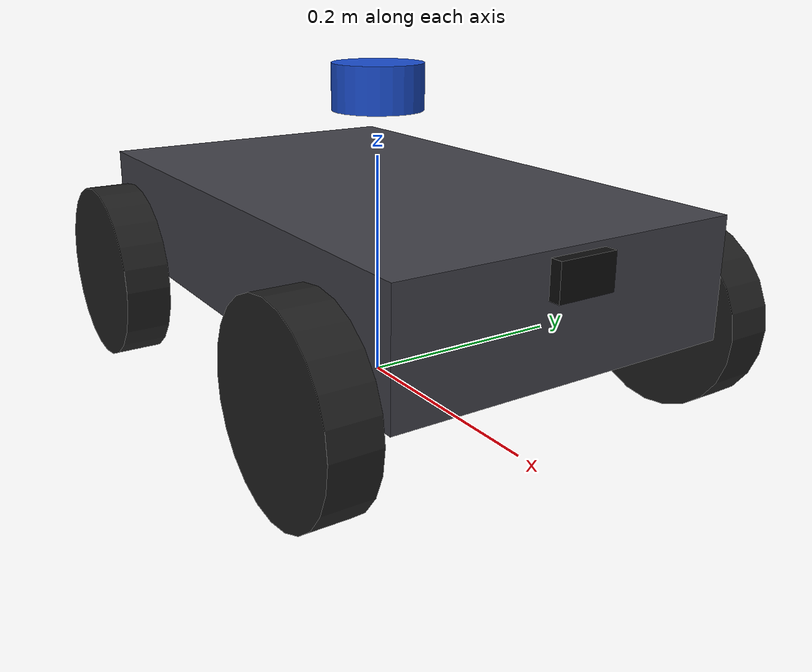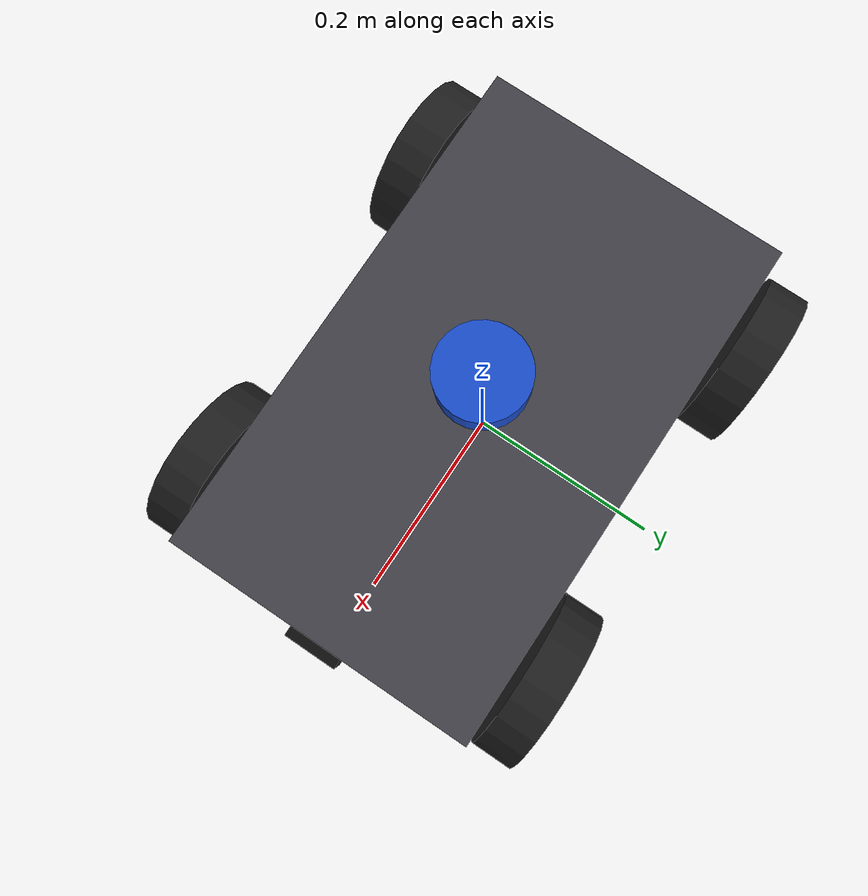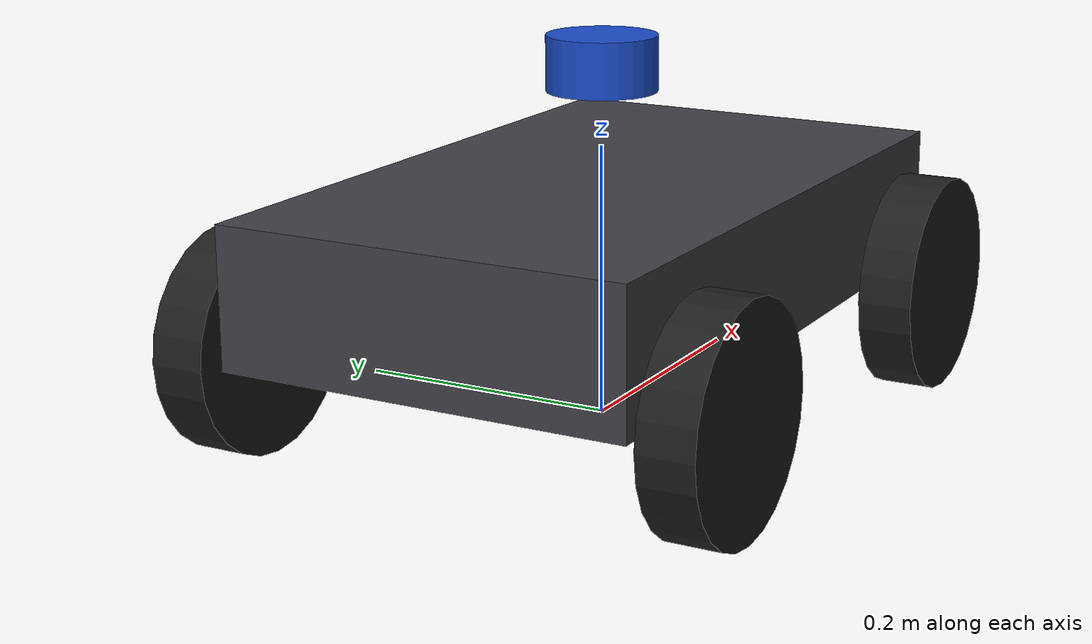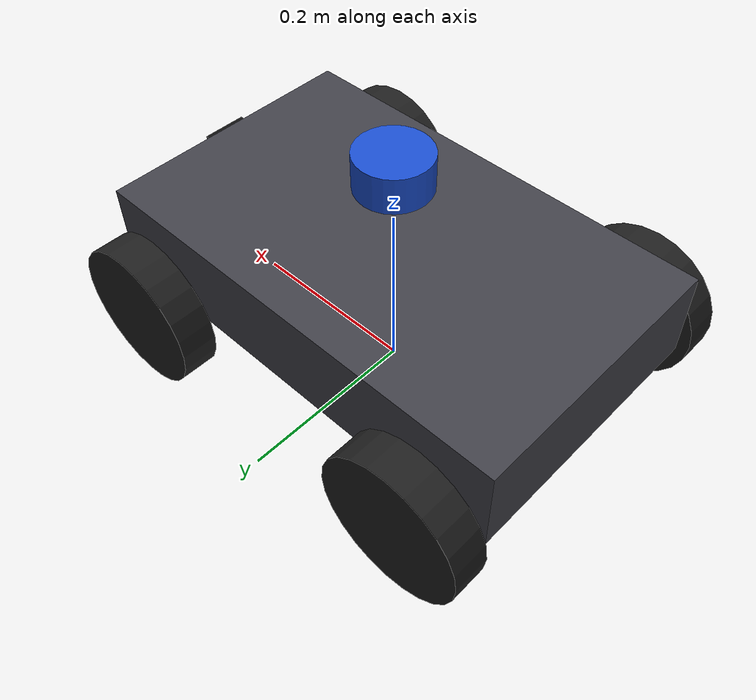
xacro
<?xml version="1.0"?>
<robot name="four_wheel_steering_robot" xmlns:xacro="http://www.ros.org/wiki/xacro">

  <!-- Arguments -->
  <xacro:arg name="controllers_yaml" default=""/>
  <xacro:arg name="camera_width" default="640"/>
  <xacro:arg name="camera_height" default="480"/>

  <!-- Include modular components -->
  <xacro:include filename="materials.xacro"/>
  <xacro:include filename="chassis.xacro"/>
  <xacro:include filename="steering.xacro"/>
  <xacro:include filename="wheel.xacro"/>
  <xacro:include filename="sensors.xacro"/>
  <xacro:include filename="ros2_control.xacro"/>

  <!-- Geometry constants -->
  <xacro:property name="wheel_base_half" value="0.18"/>
  <xacro:property name="track_width_half" value="0.18"/>

  <!-- Front Left Corner -->
  <xacro:steering_assembly prefix="fl" parent="base_link"
                           x="${wheel_base_half}" y="${track_width_half}" z="0.0"/>
  <xacro:driven_wheel prefix="fl" parent="fl_knuckle_link"/>

  <!-- Front Right Corner -->
  <xacro:steering_assembly prefix="fr" parent="base_link"
                           x="${wheel_base_half}" y="-${track_width_half}" z="0.0"/>
  <xacro:driven_wheel prefix="fr" parent="fr_knuckle_link"/>

  <!-- Rear Left Corner -->
  <xacro:steering_assembly prefix="rl" parent="base_link"
                           x="-${wheel_base_half}" y="${track_width_half}" z="0.0"/>
  <xacro:driven_wheel prefix="rl" parent="rl_knuckle_link"/>

  <!-- Rear Right Corner -->
  <xacro:steering_assembly prefix="rr" parent="base_link"
                           x="-${wheel_base_half}" y="-${track_width_half}" z="0.0"/>
  <xacro:driven_wheel prefix="rr" parent="rr_knuckle_link"/>

  <!-- ros2_control Hardware Interface & Gazebo Plugin -->
  <xacro:four_wheel_ros2_control controllers_yaml="$(arg controllers_yaml)"/>

</robot>

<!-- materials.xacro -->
<robot xmlns:xacro="http://www.ros.org/wiki/xacro">

  <material name="chassis_grey">
    <color rgba="0.25 0.25 0.28 1.0"/>
  </material>

  <material name="knuckle_silver">
    <color rgba="0.75 0.75 0.75 1.0"/>
  </material>

  <material name="wheel_dark">
    <color rgba="0.12 0.12 0.12 1.0"/>
  </material>

  <material name="lidar_blue">
    <color rgba="0.1 0.3 0.8 1.0"/>
  </material>

  <material name="sensor_black">
    <color rgba="0.05 0.05 0.05 1.0"/>
  </material>

  <material name="accent_orange">
    <color rgba="0.95 0.45 0.1 1.0"/>
  </material>

</robot>

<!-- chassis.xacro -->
<robot xmlns:xacro="http://www.ros.org/wiki/xacro">

  <!-- Base footprint: massless ground projection link -->
  <link name="base_footprint"/>

  <joint name="base_footprint_joint" type="fixed">
    <parent link="base_footprint"/>
    <child link="base_link"/>
    <origin xyz="0 0 0.08" rpy="0 0 0"/>
  </joint>

  <!-- Base link: main chassis body -->
  <link name="base_link">
    <visual>
      <origin xyz="0 0 0.05" rpy="0 0 0"/>
      <geometry>
        <box size="0.50 0.30 0.10"/>
      </geometry>
      <material name="chassis_grey"/>
    </visual>
    <collision>
      <origin xyz="0 0 0.05" rpy="0 0 0"/>
      <geometry>
        <box size="0.52 0.38 0.14"/>
      </geometry>
    </collision>
    <inertial>
      <origin xyz="0 0 0.05" rpy="0 0 0"/>
      <mass value="8.0"/>
      <inertia ixx="0.066667" ixy="0.0" ixz="0.0"
               iyy="0.173333" iyz="0.0"
               izz="0.226667"/>
    </inertial>
  </link>

  <gazebo reference="base_link">
    <material>Gazebo/DarkGrey</material>
    <mu1>0.8</mu1>
    <mu2>0.8</mu2>
    <kp>10000000.0</kp>
    <kd>10.0</kd>
    <minDepth>0.002</minDepth>
    <maxVel>0.01</maxVel>
  </gazebo>

</robot>

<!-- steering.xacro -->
<robot xmlns:xacro="http://www.ros.org/wiki/xacro">

  <!-- Macro for steering knuckle assembly -->
  <xacro:macro name="steering_assembly" params="prefix parent x y z">
    <joint name="${prefix}_steering_joint" type="revolute">
      <parent link="${parent}"/>
      <child link="${prefix}_knuckle_link"/>
      <origin xyz="${x} ${y} ${z}" rpy="0 0 0"/>
      <axis xyz="0 0 1"/>
      <limit lower="-1.57079632679" upper="1.57079632679" effort="25.0" velocity="4.0"/>
      <dynamics damping="0.1" friction="0.05"/>
    </joint>

    <link name="${prefix}_knuckle_link">
      <visual>
        <origin xyz="0 0 0" rpy="0 0 0"/>
        <geometry>
          <cylinder radius="0.02" length="0.06"/>
        </geometry>
        <material name="knuckle_silver"/>
      </visual>
      <collision>
        <origin xyz="0 0 0" rpy="0 0 0"/>
        <geometry>
          <cylinder radius="0.02" length="0.06"/>
        </geometry>
      </collision>
      <inertial>
        <origin xyz="0 0 0" rpy="0 0 0"/>
        <mass value="0.3"/>
        <inertia ixx="0.00012" ixy="0.0" ixz="0.0"
                 iyy="0.00012" iyz="0.0"
                 izz="0.00006"/>
      </inertial>
    </link>

    <gazebo reference="${prefix}_knuckle_link">
      <material>Gazebo/Grey</material>
    </gazebo>
  </xacro:macro>

</robot>

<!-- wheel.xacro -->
<robot xmlns:xacro="http://www.ros.org/wiki/xacro">

  <!-- Macro for driven wheel assembly -->
  <xacro:macro name="driven_wheel" params="prefix parent">
    <joint name="${prefix}_wheel_joint" type="continuous">
      <parent link="${parent}"/>
      <child link="${prefix}_wheel_link"/>
      <origin xyz="0 0 0" rpy="0 0 0"/>
      <axis xyz="0 1 0"/>
      <dynamics damping="0.05" friction="0.02"/>
    </joint>

    <link name="${prefix}_wheel_link">
      <visual>
        <origin xyz="0 0 0" rpy="${pi/2} 0 0"/>
        <geometry>
          <cylinder radius="0.08" length="0.04"/>
        </geometry>
        <material name="wheel_dark"/>
      </visual>
      <collision>
        <origin xyz="0 0 0" rpy="${pi/2} 0 0"/>
        <geometry>
          <cylinder radius="0.08" length="0.04"/>
        </geometry>
      </collision>
      <inertial>
        <origin xyz="0 0 0" rpy="0 0 0"/>
        <mass value="0.6"/>
        <inertia ixx="0.00104" ixy="0.0" ixz="0.0"
                 iyy="0.00192" iyz="0.0"
                 izz="0.00104"/>
      </inertial>
    </link>

    <gazebo reference="${prefix}_wheel_link">
      <material>Gazebo/Black</material>
      <mu1>1.0</mu1>
      <mu2>0.2</mu2>
      <kp>1000000.0</kp>
      <kd>100.0</kd>
      <minDepth>0.001</minDepth>
    </gazebo>
  </xacro:macro>

</robot>

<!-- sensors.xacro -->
<robot xmlns:xacro="http://www.ros.org/wiki/xacro">

  <!-- ==================== LiDAR Sensor ==================== -->
  <link name="lidar_link">
    <visual>
      <origin xyz="0 0 0" rpy="0 0 0"/>
      <geometry>
        <cylinder radius="0.04" length="0.04"/>
      </geometry>
      <material name="lidar_blue"/>
    </visual>
    <collision>
      <origin xyz="0 0 0" rpy="0 0 0"/>
      <geometry>
        <cylinder radius="0.04" length="0.04"/>
      </geometry>
    </collision>
    <inertial>
      <origin xyz="0 0 0" rpy="0 0 0"/>
      <mass value="0.15"/>
      <inertia ixx="0.00008" ixy="0.0" ixz="0.0"
               iyy="0.00008" iyz="0.0"
               izz="0.00012"/>
    </inertial>
  </link>

  <joint name="lidar_joint" type="fixed">
    <parent link="base_link"/>
    <child link="lidar_link"/>
    <origin xyz="0.0 0.0 0.18" rpy="0 0 0"/>
  </joint>

  <gazebo reference="lidar_link">
    <material>Gazebo/Blue</material>
    <sensor name="lidar" type="gpu_lidar">
      <pose>0 0 0 0 0 0</pose>
      <always_on>true</always_on>
      <visualize>true</visualize>
      <update_rate>15</update_rate>
      <topic>/scan</topic>
      <gz_frame_id>lidar_link</gz_frame_id>
      <ray>
        <scan>
          <horizontal>
            <samples>720</samples>
            <resolution>1.0</resolution>
            <min_angle>-3.14159265359</min_angle>
            <max_angle>3.14159265359</max_angle>
          </horizontal>
        </scan>
        <range>
          <min>0.10</min>
          <max>20.0</max>
          <resolution>0.01</resolution>
        </range>
      </ray>
    </sensor>
  </gazebo>

  <!-- ==================== IMU Sensor ==================== -->
  <link name="imu_link">
    <visual>
      <origin xyz="0 0 0" rpy="0 0 0"/>
      <geometry>
        <box size="0.03 0.03 0.015"/>
      </geometry>
      <material name="accent_orange"/>
    </visual>
    <collision>
      <origin xyz="0 0 0" rpy="0 0 0"/>
      <geometry>
        <box size="0.03 0.03 0.015"/>
      </geometry>
    </collision>
    <inertial>
      <origin xyz="0 0 0" rpy="0 0 0"/>
      <mass value="0.05"/>
      <inertia ixx="0.00001" ixy="0.0" ixz="0.0"
               iyy="0.00001" iyz="0.0"
               izz="0.00001"/>
    </inertial>
  </link>

  <joint name="imu_joint" type="fixed">
    <parent link="base_link"/>
    <child link="imu_link"/>
    <origin xyz="0.0 0.0 0.05" rpy="0 0 0"/>
  </joint>

  <gazebo reference="imu_link">
    <material>Gazebo/Orange</material>
    <sensor name="imu_sensor" type="imu">
      <always_on>true</always_on>
      <update_rate>50</update_rate>
      <topic>/imu/data</topic>
      <gz_frame_id>imu_link</gz_frame_id>
      <imu>
        <angular_velocity>
          <x>
            <noise type="gaussian">
              <mean>0.0</mean>
              <stddev>0.0002</stddev>
            </noise>
          </x>
          <y>
            <noise type="gaussian">
              <mean>0.0</mean>
              <stddev>0.0002</stddev>
            </noise>
          </y>
          <z>
            <noise type="gaussian">
              <mean>0.0</mean>
              <stddev>0.0002</stddev>
            </noise>
          </z>
        </angular_velocity>
        <linear_acceleration>
          <x>
            <noise type="gaussian">
              <mean>0.0</mean>
              <stddev>0.001</stddev>
            </noise>
          </x>
          <y>
            <noise type="gaussian">
              <mean>0.0</mean>
              <stddev>0.001</stddev>
            </noise>
          </y>
          <z>
            <noise type="gaussian">
              <mean>0.0</mean>
              <stddev>0.001</stddev>
            </noise>
          </z>
        </linear_acceleration>
      </imu>
    </sensor>
  </gazebo>

  <!-- ==================== Camera Sensor ==================== -->
  <link name="camera_link">
    <visual>
      <origin xyz="0 0 0" rpy="0 0 0"/>
      <geometry>
        <box size="0.02 0.05 0.03"/>
      </geometry>
      <material name="sensor_black"/>
    </visual>
    <collision>
      <origin xyz="0 0 0" rpy="0 0 0"/>
      <geometry>
        <box size="0.02 0.05 0.03"/>
      </geometry>
    </collision>
    <inertial>
      <origin xyz="0 0 0" rpy="0 0 0"/>
      <mass value="0.05"/>
      <inertia ixx="0.00001" ixy="0.0" ixz="0.0"
               iyy="0.00001" iyz="0.0"
               izz="0.00001"/>
    </inertial>
  </link>

  <joint name="camera_joint" type="fixed">
    <parent link="base_link"/>
    <child link="camera_link"/>
    <origin xyz="0.25 0.0 0.08" rpy="0 0 0"/>
  </joint>

  <link name="camera_optical_link">
    <inertial>
      <origin xyz="0 0 0" rpy="0 0 0"/>
      <mass value="0.001"/>
      <inertia ixx="0.000001" ixy="0.0" ixz="0.0"
               iyy="0.000001" iyz="0.0"
               izz="0.000001"/>
    </inertial>
  </link>
  <joint name="camera_optical_joint" type="fixed">
    <parent link="camera_link"/>
    <child link="camera_optical_link"/>
    <origin xyz="0 0 0" rpy="-1.57079632679 0 -1.57079632679"/>
  </joint>

  <gazebo reference="camera_link">
    <material>Gazebo/Black</material>
    <sensor name="camera_sensor" type="camera">
      <always_on>true</always_on>
      <update_rate>15</update_rate>
      <topic>/camera/image_raw</topic>
      <gz_frame_id>camera_optical_link</gz_frame_id>
      <camera>
        <horizontal_fov>1.3962634</horizontal_fov>
        <image>
          <width>$(arg camera_width)</width>
          <height>$(arg camera_height)</height>
          <format>R8G8B8</format>
        </image>
        <clip>
          <near>0.05</near>
          <far>8.0</far>
        </clip>
      </camera>
    </sensor>
  </gazebo>

</robot>
